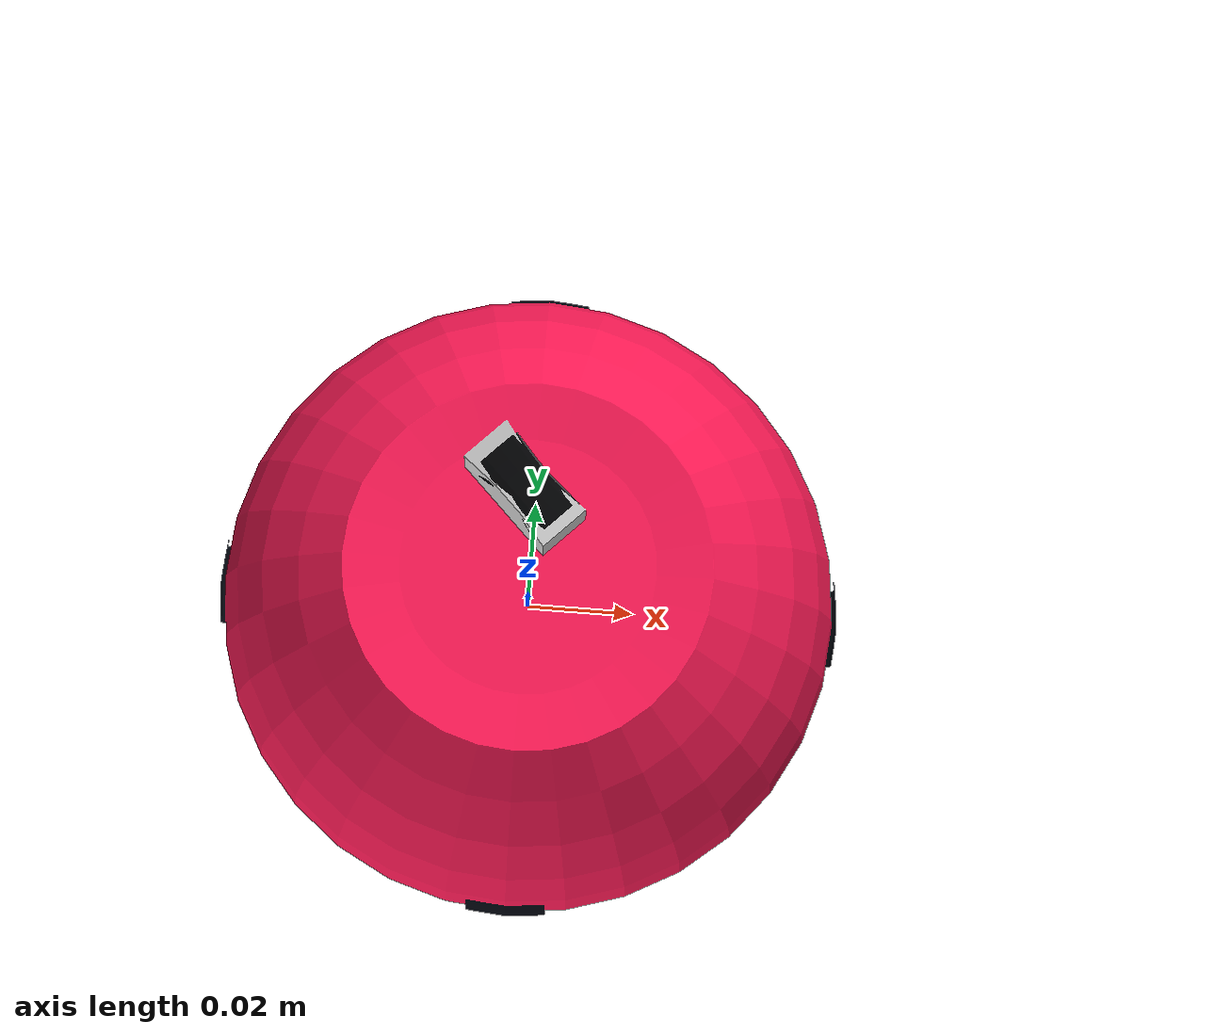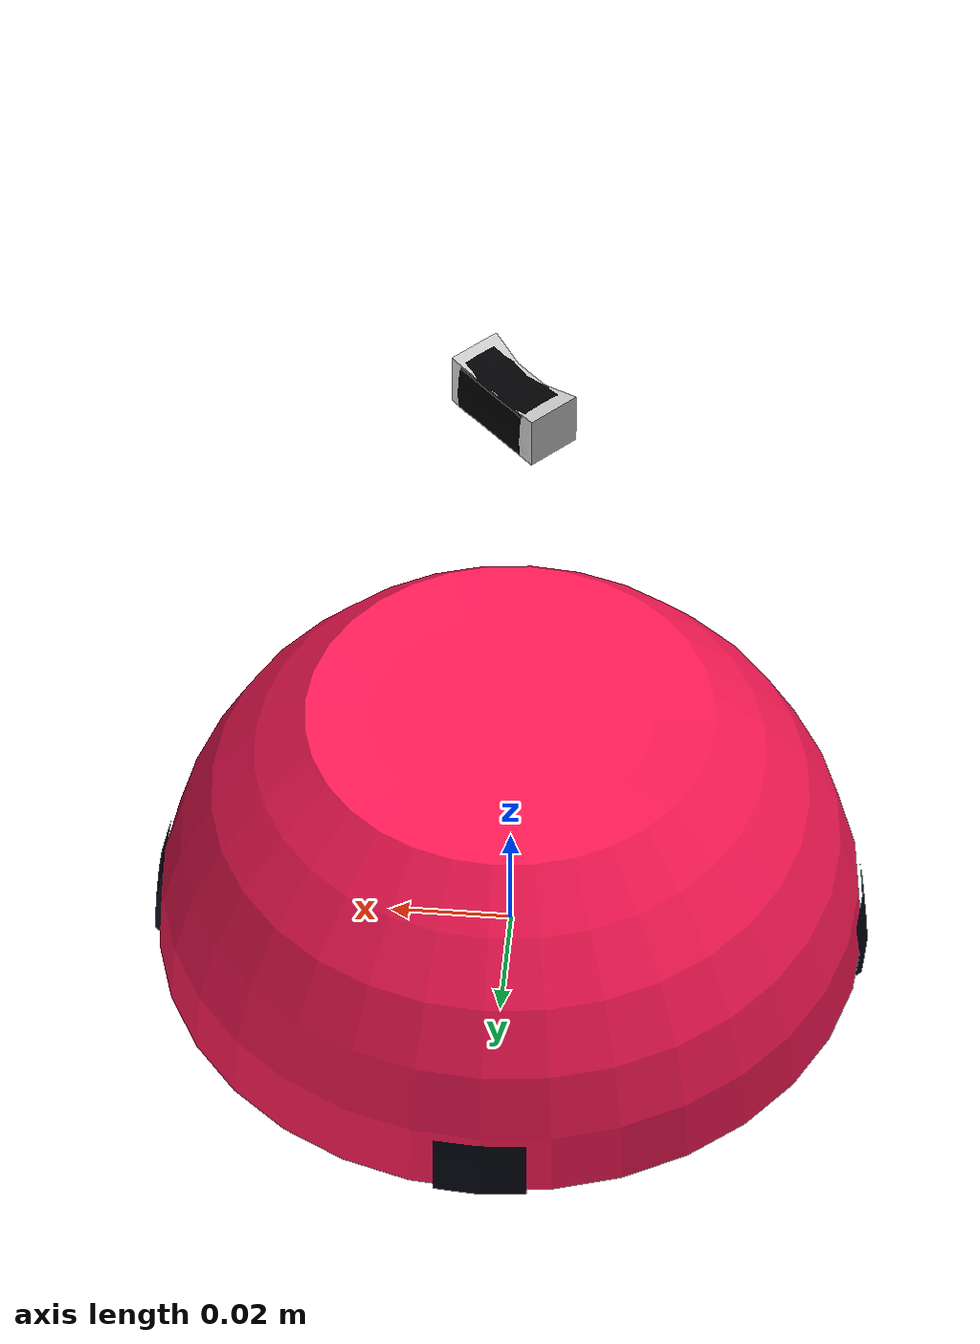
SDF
<?xml version='1.0' encoding='UTF-8'?>
<sdf version="1.6">
    <model name="brain_coral">
        <pose>0 0 0 0 0 0</pose>
        <static>true</static>

        <link name="base_link">
            <pose>0 0 0 0 0 0</pose>
            <visual name="base_link_visual">
              <geometry>
                <mesh>
                  <uri>model://brain_coral/meshes/Brain_Coral.dae</uri>
                </mesh>
              </geometry>
            </visual>

        </link>

    </model>
</sdf>
